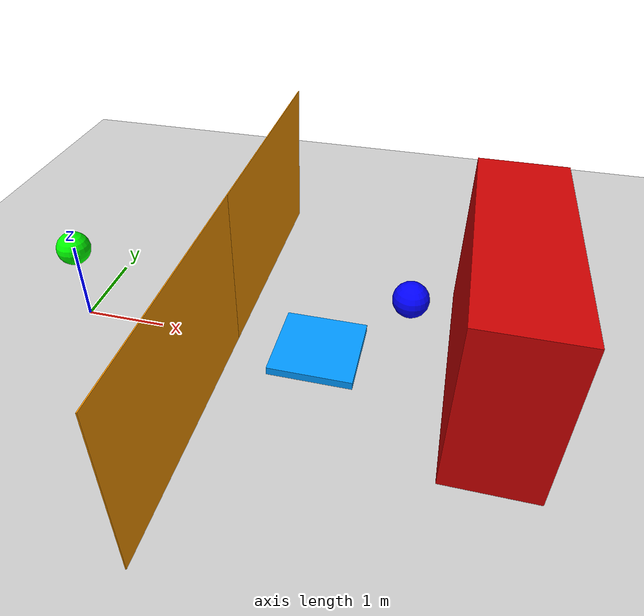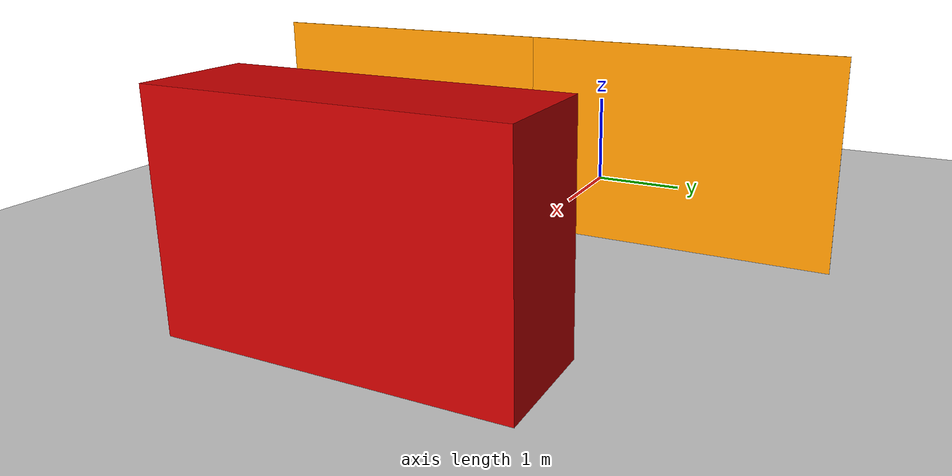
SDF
<?xml version="1.0" ?>
<sdf version="1.6">
  <world name="uwb_test_world">

    <!-- ☀️ 光源與地板 -->
    <include>
      <uri>model://sun</uri>
    </include>
    <include>
      <uri>model://ground_plane</uri>
    </include>

    <!-- UAV（空中標籤） -->
    <include>
      <uri>model://uwb_tag_UAV</uri>
      <name>uwb_tag_UAV_100</name>
      <pose>0 0 1.0 0 0 0</pose>
    </include>

    <!-- USV（水面標籤） -->
    <include>
      <uri>model://uwb_tag_USV</uri>
      <name>uwb_tag_USV_200</name>
      <pose>4 0 1.0 0 0 0</pose>
    </include>

    <!-- 🟧 左側薄牆（可以測 NLOS_S） -->
    <model name="thin_wall_left">
      <pose>2 1.5 1.0 0 0 0</pose> <!-- 左上角 -->
      <static>true</static>
      <link name="link">
        <collision name="collision">
          <geometry><box><size>0.01 3 2</size></box></geometry>
        </collision>
        <visual name="visual">
          <geometry><box><size>0.01 3 2</size></box></geometry>
          <material><diffuse>1 0.6 0 1</diffuse></material>
        </visual>
      </link>
    </model>

    <!-- 🟧 右側薄牆 -->
    <model name="thin_wall_right">
      <pose>2 -1.5 1.0 0 0 0</pose> <!-- 右下角 -->
      <static>true</static>
      <link name="link">
        <collision name="collision">
          <geometry><box><size>0.01 3 2</size></box></geometry>
        </collision>
        <visual name="visual">
          <geometry><box><size>0.01 3 2</size></box></geometry>
          <material><diffuse>1 0.6 0 1</diffuse></material>
        </visual>
      </link>
    </model>

    <!-- 🟥 前方厚牆（可以產生純 NLOS） -->
    <model name="thick_wall_front">
      <pose>5 0 1.0 0 0 0</pose>
      <static>true</static>
      <link name="link">
        <collision name="collision">
          <geometry><box><size>1.0 3 2</size></box></geometry>
        </collision>
        <visual name="visual">
          <geometry><box><size>1.0 3 2</size></box></geometry>
          <material><diffuse>0.8 0 0 1</diffuse></material>
        </visual>
      </link>
    </model>

    <!-- 🟦 地面上的反射物（測 NLOS_H） -->
    <model name="reflecting_plate">
      <pose>3 0 0.05 0 0 0</pose> <!-- 靠近地面 -->
      <static>true</static>
      <link name="link">
        <collision name="collision">
          <geometry><box><size>1.0 1.0 0.1</size></box></geometry>
        </collision>
        <visual name="visual">
          <geometry><box><size>1.0 1.0 0.1</size></box></geometry>
          <material><diffuse>0 0.6 1 1</diffuse></material> <!-- 淺藍色代表反射區 -->
        </visual>
      </link>
    </model>

  </world>
</sdf>

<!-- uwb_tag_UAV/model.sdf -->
<sdf version="1.6">
  <model name="uwb_tag_UAV">
    <static>false</static>
    <link name="link">
      <gravity>0</gravity> <!-- 🔺 加上這行讓模型不受重力影響 -->
      <collision name="collision">
        <geometry>
          <sphere><radius>0.2</radius></sphere>
        </geometry>
      </collision>
      <visual name="visual">
        <geometry>
          <sphere><radius>0.2</radius></sphere>
        </geometry>
        <material>
          <ambient>0 1 0 1</ambient>
          <diffuse>0 1 0 1</diffuse>
        </material>
      </visual>
    </link>
    <plugin name="gtec_uwb_plugin" filename="libgtec_uwb_plugin.so">
      <update_rate>25</update_rate>
      <nlosSoftWallWidth>0.25</nlosSoftWallWidth>
      <tag_z_offset>0</tag_z_offset>
      <tag_link>link</tag_link>
      <anchor_prefix>uwb_tag_USV</anchor_prefix>
      <all_los>false</all_los>
    </plugin>
  </model>
</sdf>

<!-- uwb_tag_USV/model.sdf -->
<sdf version="1.6">
  <model name="uwb_tag_USV">
    <static>false</static>
    <link name="link">
      <gravity>0</gravity> <!-- 🔺 加上這行讓模型不受重力影響 -->
      <collision name="collision">
        <geometry>
          <sphere><radius>0.2</radius></sphere>
        </geometry>
      </collision>
      <visual name="visual">
        <geometry>
          <sphere><radius>0.2</radius></sphere>
        </geometry>
        <material>
          <ambient>0 0 1 1</ambient>
          <diffuse>0 0 1 1</diffuse>
        </material>
      </visual>
    </link>
    <plugin name="gtec_uwb_plugin" filename="libgtec_uwb_plugin.so">
      <update_rate>25</update_rate>
      <nlosSoftWallWidth>0.25</nlosSoftWallWidth>
      <tag_z_offset>0</tag_z_offset>
      <tag_link>link</tag_link>
      <anchor_prefix>uwb_tag_UAV</anchor_prefix>
      <all_los>false</all_los>
    </plugin>
  </model>
</sdf>
